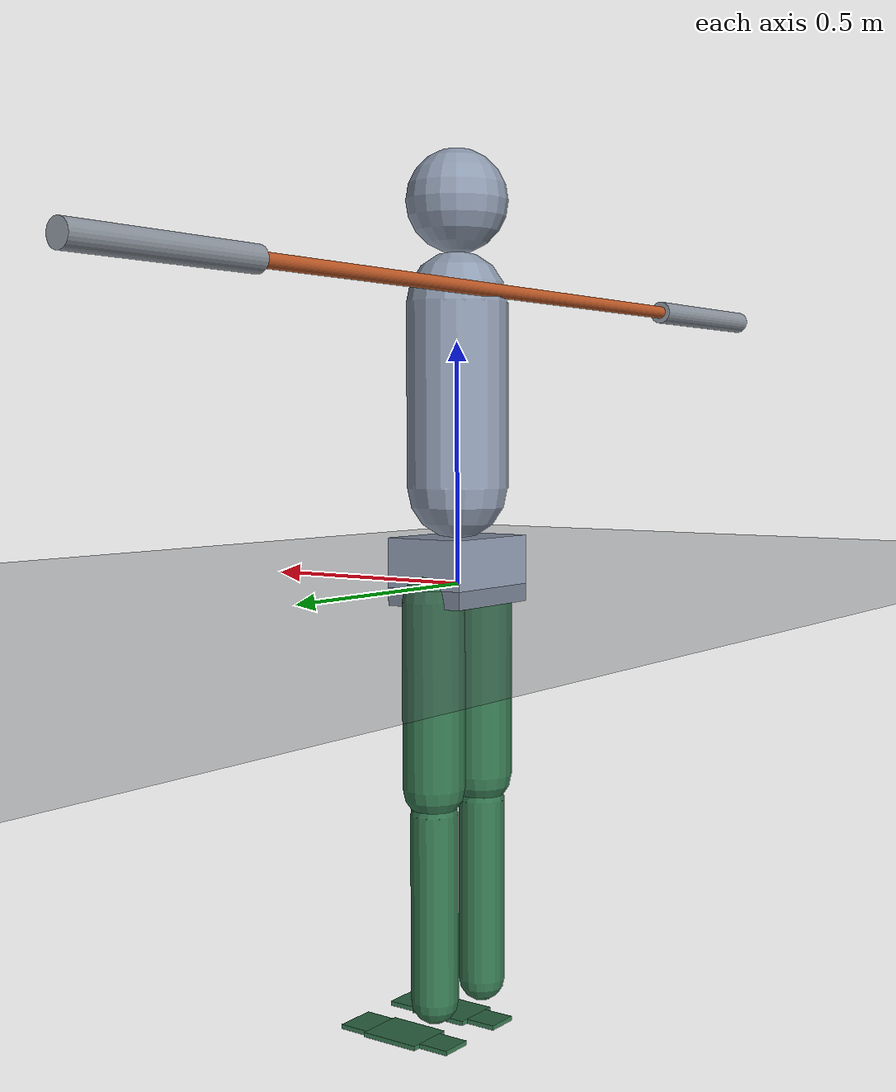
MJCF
<mujoco model="loaded-cmj-20kg-elite-soccer-v3">
  <compiler angle="radian" coordinate="local" inertiafromgeom="false"
            eulerseq="xyz" autolimits="true"/>

  <default>
    <!-- Major joints: authority passive defaults are exactly zero
         (PT-07). The MTP passive engineering prior (FM-09) is set on the
         MTP joints themselves. -->
    <joint type="hinge" limited="true" stiffness="0" damping="0" armature="0"/>
    <geom condim="3" friction="0.9 0 0" rgba="0.55 0.60 0.68 1"/>
    <motor gear="1" ctrllimited="false" forcelimited="false"/>
  </default>

  <worldbody>
    <light name="key" pos="1.5 -1.5 3.0" dir="-0.4 0.4 -1" directional="true"/>

    <geom name="floor" type="plane" pos="0 0 0" size="0 0 0.05"
          contype="1" conaffinity="6" condim="3"
          friction="0.9 0 0" rgba="0.35 0.37 0.40 1"/>

    <!-- ================= planar root body ================= -->
    <!-- Unconstrained planar floating base: root_tx, root_tz, root_ry.
         No spring, no damping, no armature, no positional limit, no catch. -->
    <body name="pelvis" pos="0 0 0" quat="1 0 0 0">
      <joint name="root_tx" type="slide" axis="1 0 0" limited="false"
             stiffness="0" damping="0" armature="0"/>
      <joint name="root_tz" type="slide" axis="0 0 1" limited="false"
             stiffness="0" damping="0" armature="0"/>
      <joint name="root_ry" type="hinge" axis="0 1 0" limited="false"
             stiffness="0" damping="0" armature="0"/>
      <!-- de Leva lower trunk (LPT): pelvis at MIDH, COM +0.059660635 m above MIDH.
           AB-08 / DERIVED_QUANTITIES.pelvis -->
      <inertial pos="0 0 0.05966063512349223" quat="1 0 0 0" mass="8.8243"
                diaginertia="0.06317964198451871 0.07870896370431779 0.07170511974256877"/>
      <!-- fail-register shell (floor contact = task failure, CC-02) -->
      <geom name="pelvis_collision" type="box" pos="0 0 0.03" size="0.09 0.12 0.07"
            contype="4" conaffinity="7" rgba="0.55 0.60 0.68 1"/>

      <!-- ================= reduced HAT ================= -->
      <body name="HAT" pos="0 0 0" quat="1 0 0 0">
        <joint name="trunk_pelvis" type="hinge" axis="0 1 0"
               range="-0.610865 0.610865" limited="true"
               stiffness="0" damping="0" armature="0"/>
        <!-- UB-03/UB-04/UB-05: mass 38.7969 kg, COM (-0.015964566, 0, 0.449673876),
             full inertia about COM (Ixz = -0.020779449 preserved) -->
        <inertial pos="-0.01596456566162191 0 0.4496738763907584"
                  mass="38.7969"
                  fullinertia="1.692352492111382 1.4753589080582343 0.8504250560234003 0.0 -0.02077944879714553 0.0"/>
        <!-- RES-83 collision shell above the sole; fail register (CC-02). -->
        <geom name="hat_torso_collision" type="capsule"
              fromto="0 0 0.20 0 0 0.58" size="0.105"
              contype="4" conaffinity="7" rgba="0.55 0.60 0.68 1"/>
        <geom name="hat_head_collision" type="sphere" pos="0 0 0.785" size="0.105"
              contype="4" conaffinity="7" rgba="0.55 0.60 0.68 1"/>

        <!-- ================= composite IWF load bar ================= -->
        <body name="bar" pos="-0.095 0 0.6" quat="1 0 0 0">
          <inertial pos="0 0 0" quat="1 0 0 0" mass="20.0"
                    diaginertia="11.75585696777048 0.004786777979600392 11.75585696777048"/>
          <!-- shaft: half-length 0.685, radius 0.014, axis along +y -->
          <geom name="bar_shaft" type="cylinder" size="0.014 0.685"
                quat="0.7071067811865476 -0.7071067811865476 0 0"
                contype="4" conaffinity="7" rgba="0.75 0.35 0.15 1"/>
          <!-- sleeves: span |y| in [0.685, 1.100], half-length 0.2075, radius 0.025 -->
          <geom name="bar_sleeve_left" type="cylinder" pos="0 0.8925 0" size="0.025 0.2075"
                quat="0.7071067811865476 -0.7071067811865476 0 0"
                contype="4" conaffinity="7" rgba="0.55 0.58 0.62 1"/>
          <geom name="bar_sleeve_right" type="cylinder" pos="0 -0.8925 0" size="0.025 0.2075"
                quat="0.7071067811865476 -0.7071067811865476 0 0"
                contype="4" conaffinity="7" rgba="0.55 0.58 0.62 1"/>
        </body>
      </body>

      <!-- ================= left lower limb ================= -->
      <!-- Leg plane centerline y = +0.085 (SL-01; reduced-model geometry). -->
      <body name="left_thigh" pos="0 0.085 0" quat="1 0 0 0">
        <joint name="left_hip" type="hinge" axis="0 -1 0"
               range="-0.349066 2.268928" limited="true"
               stiffness="0" damping="0" armature="0"/>
        <!-- AB-14: mass 11.1864 kg, COM 0.182222381 m below HJC -->
        <inertial pos="0 0 -0.18222238125" quat="1 0 0 0" mass="11.1864"
                  diaginertia="0.23976057065071502 0.23976057065071502 0.04917660063207587"/>
        <geom name="left_thigh_collision" type="capsule"
              fromto="0 0 -0.03 0 0 -0.42" size="0.065"
              contype="4" conaffinity="7" rgba="0.20 0.45 0.30 1"/>

        <body name="left_shank" pos="0 0 -0.4449875" quat="1 0 0 0">
          <joint name="left_knee" type="hinge" axis="0 1 0"
                 range="0 2.443461" limited="true"
                 stiffness="0" damping="0" armature="0"/>
          <!-- AB-14: mass 3.4207 kg, COM 0.203983866 m below KJC -->
          <inertial pos="0 0 -0.20398386645" quat="1 0 0 0" mass="3.4207"
                    diaginertia="0.04438440231686326 0.04654918083021296 0.007594621444486416"/>
          <geom name="left_shank_collision" type="capsule"
                fromto="0 0 -0.03 0 0 -0.43" size="0.05"
                contype="4" conaffinity="7" rgba="0.20 0.45 0.30 1"/>

          <!-- hindfoot body frame origin at the ankle joint center; +x
               anterior, +z superior; sole plane z = -0.071565 (FM-07/FM-13).
               Ankle joint center 0.055 m from the heel. -->
          <body name="left_hindfoot" pos="0 0 -0.4574655" quat="1 0 0 0">
            <joint name="left_ankle" type="hinge" axis="0 -1 0"
                   range="-0.959931 0.785398" limited="true"
                   stiffness="0" damping="0" armature="0"/>
            <!-- FM-04/FM-07/FM-08: hindfoot mass 0.4675536 kg, COM (0.00831, 0, -0.0277) -->
            <inertial pos="0.00831 0 -0.0277" quat="1 0 0 0" mass="0.4675536"
                      diaginertia="0.0004337502415040432 0.0005182470417970387 0.0004168508814454441"/>
            <geom name="left_heel_support" type="box" pos="-0.02 0 -0.066565"
                  size="0.035 0.035 0.005" contype="2" conaffinity="7" condim="4"
                  friction="0.9 0 0" rgba="0.20 0.45 0.30 1"/>

            <!-- forefoot body welded to hindfoot (FM-01/FM-02/FM-03 locked
                 midfoot: no midtarsal DOF, no unapproved arch DOF). -->
            <body name="left_forefoot" pos="0.015 0 -0.05" quat="1 0 0 0">
              <!-- FM-07/FM-08: mass 0.4588952 kg, COM in ankle frame
                   (0.07208875, 0, -0.04581) -->
              <inertial pos="0.05708875 0 0.00419" quat="1 0 0 0" mass="0.4588952"
                        diaginertia="0.0003822233613175279 0.0004723188679138023 0.0006006367106418295"/>
              <!-- plantar support region FOREFOOT: x 0.070..0.20625 from the
                   heel, width 0.105. Bottom face on the sole plane. -->
              <geom name="left_forefoot_support" type="box" pos="0.068125 0 -0.016565"
                    size="0.068125 0.0525 0.005" contype="2" conaffinity="7" condim="4"
                    friction="0.9 0 0" rgba="0.20 0.45 0.30 1"/>

              <body name="left_toe" pos="0.13625 0 0.01" quat="1 0 0 0">
                <joint name="left_mtp" type="hinge" axis="0 -1 0"
                       range="-0.523599 1.570796" limited="true"
                       stiffness="25.0" damping="2.0" armature="0"/>
                <!-- FM-09 passive engineering prior: neutral 0.0,
                     k = 25.0 N*m/rad, c = 2.0 N*m*s/rad; active channel in
                     parallel (FM-10). Not tuned for jump performance. -->
                <!-- FM-04/FM-07/FM-08: phalanx mass 0.1558512 kg, COM
                     (0.029975, 0, 0) in the MTP frame -->
                <inertial pos="0.029975 0 0" quat="1 0 0 0" mass="0.1558512"
                          diaginertia="0.0001150951698085389 6.454356581420024e-05 0.00015255751919720058"/>
                <!-- plantar support region TOE: x 0.20625..0.275 from the
                     heel, width 0.090. Bottom face on the sole plane at rest. -->
                <geom name="left_toe_support" type="box" pos="0.034375 0 -0.026565"
                      size="0.034375 0.045 0.005" contype="2" conaffinity="7" condim="4"
                      friction="0.9 0 0" rgba="0.20 0.45 0.30 1"/>
              </body>
            </body>
          </body>
        </body>
      </body>

      <!-- ================= right lower limb ================= -->
      <!-- Leg plane centerline y = -0.085 (SL-01). -->
      <body name="right_thigh" pos="0 -0.085 0" quat="1 0 0 0">
        <joint name="right_hip" type="hinge" axis="0 -1 0"
               range="-0.349066 2.268928" limited="true"
               stiffness="0" damping="0" armature="0"/>
        <inertial pos="0 0 -0.18222238125" quat="1 0 0 0" mass="11.1864"
                  diaginertia="0.23976057065071502 0.23976057065071502 0.04917660063207587"/>
        <geom name="right_thigh_collision" type="capsule"
              fromto="0 0 -0.03 0 0 -0.42" size="0.065"
              contype="4" conaffinity="7" rgba="0.20 0.45 0.30 1"/>

        <body name="right_shank" pos="0 0 -0.4449875" quat="1 0 0 0">
          <joint name="right_knee" type="hinge" axis="0 1 0"
                 range="0 2.443461" limited="true"
                 stiffness="0" damping="0" armature="0"/>
          <inertial pos="0 0 -0.20398386645" quat="1 0 0 0" mass="3.4207"
                    diaginertia="0.04438440231686326 0.04654918083021296 0.007594621444486416"/>
          <geom name="right_shank_collision" type="capsule"
                fromto="0 0 -0.03 0 0 -0.43" size="0.05"
                contype="4" conaffinity="7" rgba="0.20 0.45 0.30 1"/>

          <body name="right_hindfoot" pos="0 0 -0.4574655" quat="1 0 0 0">
            <joint name="right_ankle" type="hinge" axis="0 -1 0"
                   range="-0.959931 0.785398" limited="true"
                   stiffness="0" damping="0" armature="0"/>
            <inertial pos="0.00831 0 -0.0277" quat="1 0 0 0" mass="0.4675536"
                      diaginertia="0.0004337502415040432 0.0005182470417970387 0.0004168508814454441"/>
            <geom name="right_heel_support" type="box" pos="-0.02 0 -0.066565"
                  size="0.035 0.035 0.005" contype="2" conaffinity="7" condim="4"
                  friction="0.9 0 0" rgba="0.20 0.45 0.30 1"/>

            <body name="right_forefoot" pos="0.015 0 -0.05" quat="1 0 0 0">
              <inertial pos="0.05708875 0 0.00419" quat="1 0 0 0" mass="0.4588952"
                        diaginertia="0.0003822233613175279 0.0004723188679138023 0.0006006367106418295"/>
              <geom name="right_forefoot_support" type="box" pos="0.068125 0 -0.016565"
                    size="0.068125 0.0525 0.005" contype="2" conaffinity="7" condim="4"
                    friction="0.9 0 0" rgba="0.20 0.45 0.30 1"/>

              <body name="right_toe" pos="0.13625 0 0.01" quat="1 0 0 0">
                <joint name="right_mtp" type="hinge" axis="0 -1 0"
                       range="-0.523599 1.570796" limited="true"
                       stiffness="25.0" damping="2.0" armature="0"/>
                <inertial pos="0.029975 0 0" quat="1 0 0 0" mass="0.1558512"
                          diaginertia="0.0001150951698085389 6.454356581420024e-05 0.00015255751919720058"/>
                <geom name="right_toe_support" type="box" pos="0.034375 0 -0.026565"
                      size="0.034375 0.045 0.005" contype="2" conaffinity="7" condim="4"
                      friction="0.9 0 0" rgba="0.20 0.45 0.30 1"/>
              </body>
            </body>
          </body>
        </body>
      </body>
    </body>
  </worldbody>

  <contact>
    <!-- adjacent anatomical parent-child pairs where self-contact is impossible -->
    <exclude body1="pelvis" body2="HAT"/>                 <!-- trunk-pelvis sagittal hinge -->
    <exclude body1="pelvis" body2="left_thigh"/>          <!-- left hip -->
    <exclude body1="pelvis" body2="right_thigh"/>         <!-- right hip -->
    <exclude body1="left_thigh" body2="left_shank"/>      <!-- left knee -->
    <exclude body1="right_thigh" body2="right_shank"/>    <!-- right knee -->
    <exclude body1="left_shank" body2="left_hindfoot"/>   <!-- left ankle -->
    <exclude body1="right_shank" body2="right_hindfoot"/> <!-- right ankle -->
    <exclude body1="left_hindfoot" body2="left_forefoot"/><!-- locked midfoot weld -->
    <exclude body1="right_hindfoot" body2="right_forefoot"/>
    <exclude body1="left_forefoot" body2="left_toe"/>     <!-- left MTP -->
    <exclude body1="right_forefoot" body2="right_toe"/>   <!-- right MTP -->
    <!-- intentional rigid bar/HAT attachment contact -->
    <exclude body1="HAT" body2="bar"/>
  </contact>

  <actuator>
    <motor name="m_trunk_pelvis" joint="trunk_pelvis"/>
    <motor name="m_left_hip" joint="left_hip"/>
    <motor name="m_right_hip" joint="right_hip"/>
    <motor name="m_left_knee" joint="left_knee"/>
    <motor name="m_right_knee" joint="right_knee"/>
    <motor name="m_left_ankle" joint="left_ankle"/>
    <motor name="m_right_ankle" joint="right_ankle"/>
    <motor name="m_left_mtp" joint="left_mtp"/>
    <motor name="m_right_mtp" joint="right_mtp"/>
  </actuator>
</mujoco>
